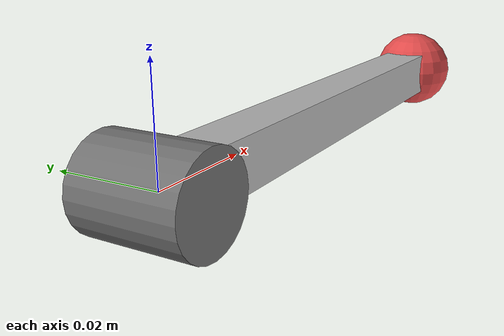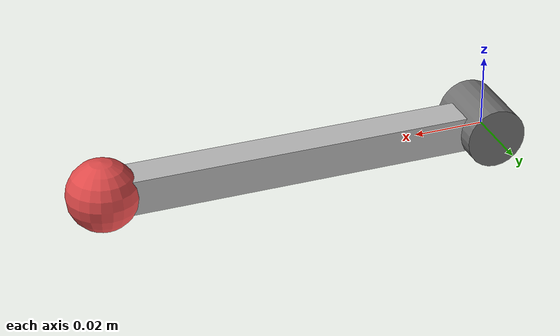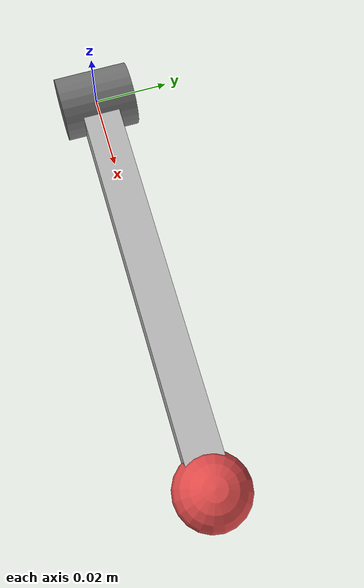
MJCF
<mujoco model="pendulum">
    <compiler angle="radian" inertiafromgeom="true"/>
    <default>
        <joint armature="1" damping="1" limited="true"/>
        <geom contype="0" friction="1 0.1 0.1" rgba="0.7 0.7 0 1"/>
    </default>
    <option gravity="0 0 -9.81" integrator="RK4" timestep="0.01"/>
    <asset>
        <texture type="skybox" builtin="gradient" rgb1="0.9 0.7 0.9" rgb2="0.94 0.97 0.97" width="2" height="2"/>
    </asset>
    <worldbody>
        <!-- Arena -->
        <include file="pendulum-lighting.xml"/>
        <!-- Arm -->
        <geom conaffinity="0" contype="0" fromto="0 -0.01 0 0 0.01 0" name="root" rgba="0.45 0.45 0.45 1" size=".0085"
              type="cylinder"/>
        <body name="arm" pos="0 0 0">
            <geom name="link1" type="box" pos="0.055 0 0" size="0.05 0.005 0.005" rgba="0.75 0.75 0.75 1"/>
            <joint axis="0 1 0" limited="false" name="joint0" pos="0 0 0" type="hinge" damping="0"/>
            <body name="fingertip" pos="0.11 0 0">
                <geom contype="0" name="fingertip" pos="0 0 0" rgba="0.9 0.3 0.3 1" size=".01" mass="1000" type="sphere"/>
            </body>
        </body>
    </worldbody>
    <actuator>
        <motor forcelimited="true" forcerange="-1.0 1.0" gear="200.0" joint="joint0"/>
    </actuator>
</mujoco>

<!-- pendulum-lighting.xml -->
<mujoco>
    <light directional="true" ambient="0.2 0.2 0.2" diffuse="0.8 0.8 0.8" specular="0.3 0.3 0.3"
           castshadow="false" pos="0.9 -0.6 3" dir="-0.5 0.5 -0.7" name="light0"/>
</mujoco>
